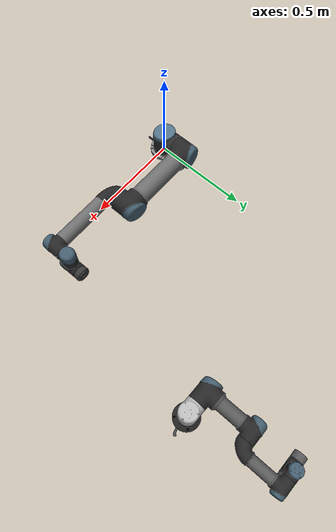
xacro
<?xml version="1.0"?>
<!-- Wrapper modeled after two_arm mutli_arm.urdf.xacro, generalized for any number of robots -->
<robot xmlns:xacro="http://www.ros.org/wiki/xacro" name="static_objects_demo">
  <!-- Initial joint positions YAML used by the ros2_control macro -->
  <xacro:arg name="initial_positions_file" default="$(find static_objects_demo)/config/initial_positions.yaml" />

  <!-- Import multi-robot URDF assembly for this package -->
  <xacro:include filename="$(find static_objects_demo)/urdf/static_objects_demo.urdf" />

  <!-- Import ros2_control macro Xacro placed alongside this wrapper in urdf/ -->
  <xacro:include filename="static_objects_demo.ros2_control.xacro" />

  <!-- Optionally instantiate the control macro (kept commented like the reference): -->

</robot>

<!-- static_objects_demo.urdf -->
<!-- |    This document was autogenerated by xacro from /home/roman/code/cps-gazebo-sim-2/src/static_objects_demo/urdf/static_objects_demo.urdf.xacro | -->
<!-- |    EDITING THIS FILE BY HAND IS NOT RECOMMENDED                                 | -->
<robot name="multi_arm">
  <!-- world reference frame -->
  <link name="world"/>
  <!-- Unified ros2_control for all arms (Ignition simulation) -->
  <ros2_control name="multi_arm_controller_manager" type="system">
    <hardware>
      <plugin>ign_ros2_control/IgnitionSystem</plugin>
    </hardware>
    <!-- robot1 joints -->
    <joint name="robot1_shoulder_pan_joint">
      <command_interface name="position"/>
      <command_interface name="velocity"/>
      <state_interface name="position">
        <param name="initial_value">0</param>
      </state_interface>
      <state_interface name="velocity"/>
      <state_interface name="effort"/>
    </joint>
    <joint name="robot1_shoulder_lift_joint">
      <command_interface name="position"/>
      <command_interface name="velocity"/>
      <state_interface name="position">
        <param name="initial_value">-1.57</param>
      </state_interface>
      <state_interface name="velocity"/>
      <state_interface name="effort"/>
    </joint>
    <joint name="robot1_elbow_joint">
      <command_interface name="position"/>
      <command_interface name="velocity"/>
      <state_interface name="position">
        <param name="initial_value">0</param>
      </state_interface>
      <state_interface name="velocity"/>
      <state_interface name="effort"/>
    </joint>
    <joint name="robot1_wrist_1_joint">
      <command_interface name="position"/>
      <command_interface name="velocity"/>
      <state_interface name="position">
        <param name="initial_value">-1.57</param>
      </state_interface>
      <state_interface name="velocity"/>
      <state_interface name="effort"/>
    </joint>
    <joint name="robot1_wrist_2_joint">
      <command_interface name="position"/>
      <command_interface name="velocity"/>
      <state_interface name="position">
        <param name="initial_value">0</param>
      </state_interface>
      <state_interface name="velocity"/>
      <state_interface name="effort"/>
    </joint>
    <joint name="robot1_wrist_3_joint">
      <command_interface name="position"/>
      <command_interface name="velocity"/>
      <state_interface name="position">
        <param name="initial_value">0</param>
      </state_interface>
      <state_interface name="velocity"/>
      <state_interface name="effort"/>
    </joint>
    <!-- robot2 joints -->
    <joint name="robot2_shoulder_pan_joint">
      <command_interface name="position"/>
      <command_interface name="velocity"/>
      <state_interface name="position">
        <param name="initial_value">0</param>
      </state_interface>
      <state_interface name="velocity"/>
      <state_interface name="effort"/>
    </joint>
    <joint name="robot2_shoulder_lift_joint">
      <command_interface name="position"/>
      <command_interface name="velocity"/>
      <state_interface name="position">
        <param name="initial_value">-1.57</param>
      </state_interface>
      <state_interface name="velocity"/>
      <state_interface name="effort"/>
    </joint>
    <joint name="robot2_elbow_joint">
      <command_interface name="position"/>
      <command_interface name="velocity"/>
      <state_interface name="position">
        <param name="initial_value">0</param>
      </state_interface>
      <state_interface name="velocity"/>
      <state_interface name="effort"/>
    </joint>
    <joint name="robot2_wrist_1_joint">
      <command_interface name="position"/>
      <command_interface name="velocity"/>
      <state_interface name="position">
        <param name="initial_value">-1.57</param>
      </state_interface>
      <state_interface name="velocity"/>
      <state_interface name="effort"/>
    </joint>
    <joint name="robot2_wrist_2_joint">
      <command_interface name="position"/>
      <command_interface name="velocity"/>
      <state_interface name="position">
        <param name="initial_value">0</param>
      </state_interface>
      <state_interface name="velocity"/>
      <state_interface name="effort"/>
    </joint>
    <joint name="robot2_wrist_3_joint">
      <command_interface name="position"/>
      <command_interface name="velocity"/>
      <state_interface name="position">
        <param name="initial_value">0</param>
      </state_interface>
      <state_interface name="velocity"/>
      <state_interface name="effort"/>
    </joint>
  </ros2_control>
  <transmission name="robot1_shoulder_pan_trans">
    <type>transmission_interface/SimpleTransmission</type>
    <joint name="robot1_shoulder_pan_joint">
      <hardwareInterface>hardware_interface/PositionJointInterface</hardwareInterface>
    </joint>
    <actuator name="robot1_shoulder_pan_motor">
      <mechanicalReduction>1</mechanicalReduction>
    </actuator>
  </transmission>
  <transmission name="robot1_shoulder_lift_trans">
    <type>transmission_interface/SimpleTransmission</type>
    <joint name="robot1_shoulder_lift_joint">
      <hardwareInterface>hardware_interface/PositionJointInterface</hardwareInterface>
    </joint>
    <actuator name="robot1_shoulder_lift_motor">
      <mechanicalReduction>1</mechanicalReduction>
    </actuator>
  </transmission>
  <transmission name="robot1_elbow_trans">
    <type>transmission_interface/SimpleTransmission</type>
    <joint name="robot1_elbow_joint">
      <hardwareInterface>hardware_interface/PositionJointInterface</hardwareInterface>
    </joint>
    <actuator name="robot1_elbow_motor">
      <mechanicalReduction>1</mechanicalReduction>
    </actuator>
  </transmission>
  <transmission name="robot1_wrist_1_trans">
    <type>transmission_interface/SimpleTransmission</type>
    <joint name="robot1_wrist_1_joint">
      <hardwareInterface>hardware_interface/PositionJointInterface</hardwareInterface>
    </joint>
    <actuator name="robot1_wrist_1_motor">
      <mechanicalReduction>1</mechanicalReduction>
    </actuator>
  </transmission>
  <transmission name="robot1_wrist_2_trans">
    <type>transmission_interface/SimpleTransmission</type>
    <joint name="robot1_wrist_2_joint">
      <hardwareInterface>hardware_interface/PositionJointInterface</hardwareInterface>
    </joint>
    <actuator name="robot1_wrist_2_motor">
      <mechanicalReduction>1</mechanicalReduction>
    </actuator>
  </transmission>
  <transmission name="robot1_wrist_3_trans">
    <type>transmission_interface/SimpleTransmission</type>
    <joint name="robot1_wrist_3_joint">
      <hardwareInterface>hardware_interface/PositionJointInterface</hardwareInterface>
    </joint>
    <actuator name="robot1_wrist_3_motor">
      <mechanicalReduction>1</mechanicalReduction>
    </actuator>
  </transmission>
  <!-- Placeholder for ros2_control transmission which don't yet exist -->
  <!-- links -  main serial chain -->
  <link name="robot1_base_link"/>
  <link name="robot1_base_link_inertia">
    <visual>
      <origin rpy="0 0 3.141592653589793" xyz="0 0 0"/>
      <geometry>
        <mesh filename="file:///home/roman/code/cps-gazebo-sim-2/install/multi_ur_description/share/multi_ur_description/meshes/ur5/visual/base.dae"/>
      </geometry>
    </visual>
    <collision>
      <origin rpy="0 0 3.141592653589793" xyz="0 0 0"/>
      <geometry>
        <mesh filename="file:///home/roman/code/cps-gazebo-sim-2/install/multi_ur_description/share/multi_ur_description/meshes/ur5/collision/base.stl"/>
      </geometry>
    </collision>
    <inertial>
      <mass value="4.0"/>
      <origin rpy="0 0 0" xyz="0 0 0"/>
      <inertia ixx="0.00443333156" ixy="0.0" ixz="0.0" iyy="0.00443333156" iyz="0.0" izz="0.0072"/>
    </inertial>
  </link>
  <link name="robot1_shoulder_link">
    <visual>
      <origin rpy="0 0 3.141592653589793" xyz="0 0 0"/>
      <geometry>
        <mesh filename="file:///home/roman/code/cps-gazebo-sim-2/install/multi_ur_description/share/multi_ur_description/meshes/ur5/visual/shoulder.dae"/>
      </geometry>
    </visual>
    <collision>
      <origin rpy="0 0 3.141592653589793" xyz="0 0 0"/>
      <geometry>
        <mesh filename="file:///home/roman/code/cps-gazebo-sim-2/install/multi_ur_description/share/multi_ur_description/meshes/ur5/collision/shoulder.stl"/>
      </geometry>
    </collision>
    <inertial>
      <mass value="3.7"/>
      <origin rpy="0 0 0" xyz="0 0 0"/>
      <inertia ixx="0.014972352344389999" ixy="0.0" ixz="0.0" iyy="0.014972352344389999" iyz="0.0" izz="0.01040625"/>
    </inertial>
  </link>
  <link name="robot1_upper_arm_link">
    <visual>
      <origin rpy="1.5707963267948966 0 -1.5707963267948966" xyz="0 0 0.13585"/>
      <geometry>
        <mesh filename="file:///home/roman/code/cps-gazebo-sim-2/install/multi_ur_description/share/multi_ur_description/meshes/ur5/visual/upperarm.dae"/>
      </geometry>
    </visual>
    <collision>
      <origin rpy="1.5707963267948966 0 -1.5707963267948966" xyz="0 0 0.13585"/>
      <geometry>
        <mesh filename="file:///home/roman/code/cps-gazebo-sim-2/install/multi_ur_description/share/multi_ur_description/meshes/ur5/collision/upperarm.stl"/>
      </geometry>
    </collision>
    <inertial>
      <mass value="8.393"/>
      <origin rpy="0 1.5707963267948966 0" xyz="-0.2125 0.0 0.136"/>
      <inertia ixx="0.1338857818623325" ixy="0.0" ixz="0.0" iyy="0.1338857818623325" iyz="0.0" izz="0.0151074"/>
    </inertial>
  </link>
  <link name="robot1_forearm_link">
    <visual>
      <origin rpy="1.5707963267948966 0 -1.5707963267948966" xyz="0 0 0.0165"/>
      <geometry>
        <mesh filename="file:///home/roman/code/cps-gazebo-sim-2/install/multi_ur_description/share/multi_ur_description/meshes/ur5/visual/forearm.dae"/>
      </geometry>
    </visual>
    <collision>
      <origin rpy="1.5707963267948966 0 -1.5707963267948966" xyz="0 0 0.0165"/>
      <geometry>
        <mesh filename="file:///home/roman/code/cps-gazebo-sim-2/install/multi_ur_description/share/multi_ur_description/meshes/ur5/collision/forearm.stl"/>
      </geometry>
    </collision>
    <inertial>
      <mass value="2.275"/>
      <origin rpy="0 1.5707963267948966 0" xyz="-0.196125 0.0 0.0165"/>
      <inertia ixx="0.03121679102890359" ixy="0.0" ixz="0.0" iyy="0.03121679102890359" iyz="0.0" izz="0.004095"/>
    </inertial>
  </link>
  <link name="robot1_wrist_1_link">
    <visual>
      <origin rpy="1.5707963267948966 0 0" xyz="0 0 -0.093"/>
      <geometry>
        <mesh filename="file:///home/roman/code/cps-gazebo-sim-2/install/multi_ur_description/share/multi_ur_description/meshes/ur5/visual/wrist1.dae"/>
      </geometry>
    </visual>
    <collision>
      <origin rpy="1.5707963267948966 0 0" xyz="0 0 -0.093"/>
      <geometry>
        <mesh filename="file:///home/roman/code/cps-gazebo-sim-2/install/multi_ur_description/share/multi_ur_description/meshes/ur5/collision/wrist1.stl"/>
      </geometry>
    </collision>
    <inertial>
      <mass value="1.219"/>
      <origin rpy="0 0 0" xyz="0 0 0"/>
      <inertia ixx="0.0020138887777775" ixy="0.0" ixz="0.0" iyy="0.0020138887777775" iyz="0.0" izz="0.0021942"/>
    </inertial>
  </link>
  <link name="robot1_wrist_2_link">
    <visual>
      <origin rpy="0 0 0" xyz="0 0 -0.095"/>
      <geometry>
        <mesh filename="file:///home/roman/code/cps-gazebo-sim-2/install/multi_ur_description/share/multi_ur_description/meshes/ur5/visual/wrist2.dae"/>
      </geometry>
    </visual>
    <collision>
      <origin rpy="0 0 0" xyz="0 0 -0.095"/>
      <geometry>
        <mesh filename="file:///home/roman/code/cps-gazebo-sim-2/install/multi_ur_description/share/multi_ur_description/meshes/ur5/collision/wrist2.stl"/>
      </geometry>
    </collision>
    <inertial>
      <mass value="1.219"/>
      <origin rpy="0 0 0" xyz="0 0 0"/>
      <inertia ixx="0.0018310388509175" ixy="0.0" ixz="0.0" iyy="0.0018310388509175" iyz="0.0" izz="0.0021942"/>
    </inertial>
  </link>
  <link name="robot1_wrist_3_link">
    <visual>
      <origin rpy="1.5707963267948966 0 0" xyz="0 0 -0.0818"/>
      <geometry>
        <mesh filename="file:///home/roman/code/cps-gazebo-sim-2/install/multi_ur_description/share/multi_ur_description/meshes/ur5/visual/wrist3.dae"/>
      </geometry>
    </visual>
    <collision>
      <origin rpy="1.5707963267948966 0 0" xyz="0 0 -0.0818"/>
      <geometry>
        <mesh filename="file:///home/roman/code/cps-gazebo-sim-2/install/multi_ur_description/share/multi_ur_description/meshes/ur5/collision/wrist3.stl"/>
      </geometry>
    </collision>
    <inertial>
      <mass value="0.1879"/>
      <origin rpy="0 0 0" xyz="0.0 0.0 -0.01525"/>
      <inertia ixx="8.062472608343e-05" ixy="0.0" ixz="0.0" iyy="8.062472608343e-05" iyz="0.0" izz="0.0001321171875"/>
    </inertial>
  </link>
  <!-- base_joint fixes base_link to the environment -->
  <joint name="robot1_base_joint" type="fixed">
    <origin rpy="0 0 0" xyz="0 0 0"/>
    <parent link="world"/>
    <child link="robot1_base_link"/>
  </joint>
  <!-- joints - main serial chain -->
  <joint name="robot1_base_link-base_link_inertia" type="fixed">
    <parent link="robot1_base_link"/>
    <child link="robot1_base_link_inertia"/>
    <origin rpy="0 0 3.141592653589793" xyz="0 0 0"/>
  </joint>
  <joint name="robot1_shoulder_pan_joint" type="revolute">
    <parent link="robot1_base_link_inertia"/>
    <child link="robot1_shoulder_link"/>
    <origin rpy="0 0 0" xyz="0 0 0.089159"/>
    <axis xyz="0 0 1"/>
    <limit effort="150.0" lower="-6.283185307179586" upper="6.283185307179586" velocity="3.141592653589793"/>
    <dynamics damping="0" friction="0"/>
  </joint>
  <joint name="robot1_shoulder_lift_joint" type="revolute">
    <parent link="robot1_shoulder_link"/>
    <child link="robot1_upper_arm_link"/>
    <origin rpy="1.570796327 0 0" xyz="0 0 0"/>
    <axis xyz="0 0 1"/>
    <limit effort="150.0" lower="-6.283185307179586" upper="6.283185307179586" velocity="3.141592653589793"/>
    <dynamics damping="0" friction="0"/>
  </joint>
  <joint name="robot1_elbow_joint" type="revolute">
    <parent link="robot1_upper_arm_link"/>
    <child link="robot1_forearm_link"/>
    <origin rpy="0 0 0" xyz="-0.425 0 0"/>
    <axis xyz="0 0 1"/>
    <limit effort="150.0" lower="-3.141592653589793" upper="3.141592653589793" velocity="3.141592653589793"/>
    <dynamics damping="0" friction="0"/>
  </joint>
  <joint name="robot1_wrist_1_joint" type="revolute">
    <parent link="robot1_forearm_link"/>
    <child link="robot1_wrist_1_link"/>
    <origin rpy="0 0 0" xyz="-0.39225 0 0.10915"/>
    <axis xyz="0 0 1"/>
    <limit effort="28.0" lower="-6.283185307179586" upper="6.283185307179586" velocity="3.141592653589793"/>
    <dynamics damping="0" friction="0"/>
  </joint>
  <joint name="robot1_wrist_2_joint" type="revolute">
    <parent link="robot1_wrist_1_link"/>
    <child link="robot1_wrist_2_link"/>
    <origin rpy="1.570796327 0 0" xyz="0 -0.09465 -1.941303950897609e-11"/>
    <axis xyz="0 0 1"/>
    <limit effort="28.0" lower="-6.283185307179586" upper="6.283185307179586" velocity="3.141592653589793"/>
    <dynamics damping="0" friction="0"/>
  </joint>
  <joint name="robot1_wrist_3_joint" type="revolute">
    <parent link="robot1_wrist_2_link"/>
    <child link="robot1_wrist_3_link"/>
    <origin rpy="1.570796326589793 3.141592653589793 3.141592653589793" xyz="0 0.0823 -1.688001216681175e-11"/>
    <axis xyz="0 0 1"/>
    <limit effort="28.0" lower="-6.283185307179586" upper="6.283185307179586" velocity="3.141592653589793"/>
    <dynamics damping="0" friction="0"/>
  </joint>
  <link name="robot1_ft_frame"/>
  <joint name="robot1_wrist_3_link-ft_frame" type="fixed">
    <parent link="robot1_wrist_3_link"/>
    <child link="robot1_ft_frame"/>
    <origin rpy="3.141592653589793 0 0" xyz="0 0 0"/>
  </joint>
  <!-- ROS-Industrial 'base' frame - base_link to UR 'Base' Coordinates transform -->
  <link name="robot1_base"/>
  <joint name="robot1_base_link-base_fixed_joint" type="fixed">
    <origin rpy="0 0 3.141592653589793" xyz="0 0 0"/>
    <parent link="robot1_base_link"/>
    <child link="robot1_base"/>
  </joint>
  <!-- ROS-Industrial 'flange' frame - attachment point for EEF models -->
  <link name="robot1_flange"/>
  <joint name="robot1_wrist_3-flange" type="fixed">
    <parent link="robot1_wrist_3_link"/>
    <child link="robot1_flange"/>
    <origin rpy="0 -1.5707963267948966 -1.5707963267948966" xyz="0 0 0"/>
  </joint>
  <!-- ROS-Industrial 'tool0' frame - all-zeros tool frame -->
  <link name="robot1_tool0"/>
  <joint name="robot1_flange-tool0" type="fixed">
    <!-- default toolframe - X+ left, Y+ up, Z+ front -->
    <origin rpy="1.5707963267948966 0 1.5707963267948966" xyz="0 0 0"/>
    <parent link="robot1_flange"/>
    <child link="robot1_tool0"/>
  </joint>
  <transmission name="robot2_shoulder_pan_trans">
    <type>transmission_interface/SimpleTransmission</type>
    <joint name="robot2_shoulder_pan_joint">
      <hardwareInterface>hardware_interface/PositionJointInterface</hardwareInterface>
    </joint>
    <actuator name="robot2_shoulder_pan_motor">
      <mechanicalReduction>1</mechanicalReduction>
    </actuator>
  </transmission>
  <transmission name="robot2_shoulder_lift_trans">
    <type>transmission_interface/SimpleTransmission</type>
    <joint name="robot2_shoulder_lift_joint">
      <hardwareInterface>hardware_interface/PositionJointInterface</hardwareInterface>
    </joint>
    <actuator name="robot2_shoulder_lift_motor">
      <mechanicalReduction>1</mechanicalReduction>
    </actuator>
  </transmission>
  <transmission name="robot2_elbow_trans">
    <type>transmission_interface/SimpleTransmission</type>
    <joint name="robot2_elbow_joint">
      <hardwareInterface>hardware_interface/PositionJointInterface</hardwareInterface>
    </joint>
    <actuator name="robot2_elbow_motor">
      <mechanicalReduction>1</mechanicalReduction>
    </actuator>
  </transmission>
  <transmission name="robot2_wrist_1_trans">
    <type>transmission_interface/SimpleTransmission</type>
    <joint name="robot2_wrist_1_joint">
      <hardwareInterface>hardware_interface/PositionJointInterface</hardwareInterface>
    </joint>
    <actuator name="robot2_wrist_1_motor">
      <mechanicalReduction>1</mechanicalReduction>
    </actuator>
  </transmission>
  <transmission name="robot2_wrist_2_trans">
    <type>transmission_interface/SimpleTransmission</type>
    <joint name="robot2_wrist_2_joint">
      <hardwareInterface>hardware_interface/PositionJointInterface</hardwareInterface>
    </joint>
    <actuator name="robot2_wrist_2_motor">
      <mechanicalReduction>1</mechanicalReduction>
    </actuator>
  </transmission>
  <transmission name="robot2_wrist_3_trans">
    <type>transmission_interface/SimpleTransmission</type>
    <joint name="robot2_wrist_3_joint">
      <hardwareInterface>hardware_interface/PositionJointInterface</hardwareInterface>
    </joint>
    <actuator name="robot2_wrist_3_motor">
      <mechanicalReduction>1</mechanicalReduction>
    </actuator>
  </transmission>
  <!-- Placeholder for ros2_control transmission which don't yet exist -->
  <!-- links -  main serial chain -->
  <link name="robot2_base_link"/>
  <link name="robot2_base_link_inertia">
    <visual>
      <origin rpy="0 0 3.141592653589793" xyz="0 0 0"/>
      <geometry>
        <mesh filename="file:///home/roman/code/cps-gazebo-sim-2/install/multi_ur_description/share/multi_ur_description/meshes/ur3/visual/base.dae"/>
      </geometry>
    </visual>
    <collision>
      <origin rpy="0 0 3.141592653589793" xyz="0 0 0"/>
      <geometry>
        <mesh filename="file:///home/roman/code/cps-gazebo-sim-2/install/multi_ur_description/share/multi_ur_description/meshes/ur3/collision/base.stl"/>
      </geometry>
    </collision>
    <inertial>
      <mass value="2.0"/>
      <origin rpy="0 0 0" xyz="0 0 0"/>
      <inertia ixx="0.0030531654454" ixy="0.0" ixz="0.0" iyy="0.0030531654454" iyz="0.0" izz="0.005625"/>
    </inertial>
  </link>
  <link name="robot2_shoulder_link">
    <visual>
      <origin rpy="0 0 3.141592653589793" xyz="0 0 0"/>
      <geometry>
        <mesh filename="file:///home/roman/code/cps-gazebo-sim-2/install/multi_ur_description/share/multi_ur_description/meshes/ur3/visual/shoulder.dae"/>
      </geometry>
    </visual>
    <collision>
      <origin rpy="0 0 3.141592653589793" xyz="0 0 0"/>
      <geometry>
        <mesh filename="file:///home/roman/code/cps-gazebo-sim-2/install/multi_ur_description/share/multi_ur_description/meshes/ur3/collision/shoulder.stl"/>
      </geometry>
    </collision>
    <inertial>
      <mass value="2.0"/>
      <origin rpy="0 0 0" xyz="0 0 0"/>
      <inertia ixx="0.008093163429399999" ixy="0.0" ixz="0.0" iyy="0.008093163429399999" iyz="0.0" izz="0.005625"/>
    </inertial>
  </link>
  <link name="robot2_upper_arm_link">
    <visual>
      <origin rpy="1.5707963267948966 0 -1.5707963267948966" xyz="0 0 0.1198"/>
      <geometry>
        <mesh filename="file:///home/roman/code/cps-gazebo-sim-2/install/multi_ur_description/share/multi_ur_description/meshes/ur3/visual/upperarm.dae"/>
      </geometry>
    </visual>
    <collision>
      <origin rpy="1.5707963267948966 0 -1.5707963267948966" xyz="0 0 0.1198"/>
      <geometry>
        <mesh filename="file:///home/roman/code/cps-gazebo-sim-2/install/multi_ur_description/share/multi_ur_description/meshes/ur3/collision/upperarm.stl"/>
      </geometry>
    </collision>
    <inertial>
      <mass value="3.42"/>
      <origin rpy="0 1.5707963267948966 0" xyz="-0.121825 0.0 0.12"/>
      <inertia ixx="0.021728483221103233" ixy="0.0" ixz="0.0" iyy="0.021728483221103233" iyz="0.0" izz="0.00961875"/>
    </inertial>
  </link>
  <link name="robot2_forearm_link">
    <visual>
      <origin rpy="1.5707963267948966 0 -1.5707963267948966" xyz="0 0 0.0275"/>
      <geometry>
        <mesh filename="file:///home/roman/code/cps-gazebo-sim-2/install/multi_ur_description/share/multi_ur_description/meshes/ur3/visual/forearm.dae"/>
      </geometry>
    </visual>
    <collision>
      <origin rpy="1.5707963267948966 0 -1.5707963267948966" xyz="0 0 0.0275"/>
      <geometry>
        <mesh filename="file:///home/roman/code/cps-gazebo-sim-2/install/multi_ur_description/share/multi_ur_description/meshes/ur3/collision/forearm.stl"/>
      </geometry>
    </collision>
    <inertial>
      <mass value="1.26"/>
      <origin rpy="0 1.5707963267948966 0" xyz="-0.106625 0.0 0.0275"/>
      <inertia ixx="0.006546806443776375" ixy="0.0" ixz="0.0" iyy="0.006546806443776375" iyz="0.0" izz="0.00354375"/>
    </inertial>
  </link>
  <link name="robot2_wrist_1_link">
    <visual>
      <origin rpy="1.5707963267948966 0 0" xyz="0 0 -0.085"/>
      <geometry>
        <mesh filename="file:///home/roman/code/cps-gazebo-sim-2/install/multi_ur_description/share/multi_ur_description/meshes/ur3/visual/wrist1.dae"/>
      </geometry>
    </visual>
    <collision>
      <origin rpy="1.5707963267948966 0 0" xyz="0 0 -0.085"/>
      <geometry>
        <mesh filename="file:///home/roman/code/cps-gazebo-sim-2/install/multi_ur_description/share/multi_ur_description/meshes/ur3/collision/wrist1.stl"/>
      </geometry>
    </collision>
    <inertial>
      <mass value="0.8"/>
      <origin rpy="0 0 0" xyz="0 0 0"/>
      <inertia ixx="0.0016106408557434" ixy="0.0" ixz="0.0" iyy="0.0016106408557434" iyz="0.0" izz="0.00225"/>
    </inertial>
  </link>
  <link name="robot2_wrist_2_link">
    <visual>
      <origin rpy="0 0 0" xyz="0 0 -0.085"/>
      <geometry>
        <mesh filename="file:///home/roman/code/cps-gazebo-sim-2/install/multi_ur_description/share/multi_ur_description/meshes/ur3/visual/wrist2.dae"/>
      </geometry>
    </visual>
    <collision>
      <origin rpy="0 0 0" xyz="0 0 -0.085"/>
      <geometry>
        <mesh filename="file:///home/roman/code/cps-gazebo-sim-2/install/multi_ur_description/share/multi_ur_description/meshes/ur3/collision/wrist2.stl"/>
      </geometry>
    </collision>
    <inertial>
      <mass value="0.8"/>
      <origin rpy="0 0 0" xyz="0 0 0"/>
      <inertia ixx="0.0015721733711303997" ixy="0.0" ixz="0.0" iyy="0.0015721733711303997" iyz="0.0" izz="0.00225"/>
    </inertial>
  </link>
  <link name="robot2_wrist_3_link">
    <visual>
      <origin rpy="1.5707963267948966 0 0" xyz="0 0 -0.082"/>
      <geometry>
        <mesh filename="file:///home/roman/code/cps-gazebo-sim-2/install/multi_ur_description/share/multi_ur_description/meshes/ur3/visual/wrist3.dae"/>
      </geometry>
    </visual>
    <collision>
      <origin rpy="1.5707963267948966 0 0" xyz="0 0 -0.082"/>
      <geometry>
        <mesh filename="file:///home/roman/code/cps-gazebo-sim-2/install/multi_ur_description/share/multi_ur_description/meshes/ur3/collision/wrist3.stl"/>
      </geometry>
    </collision>
    <inertial>
      <mass value="0.35"/>
      <origin rpy="0 0 0" xyz="0.0 0.0 -0.02"/>
      <inertia ixx="0.00013626661215999998" ixy="0.0" ixz="0.0" iyy="0.00013626661215999998" iyz="0.0" izz="0.0001792"/>
    </inertial>
  </link>
  <!-- base_joint fixes base_link to the environment -->
  <joint name="robot2_base_joint" type="fixed">
    <origin rpy="0 0 1.5708" xyz="1.0 1.0 0"/>
    <parent link="world"/>
    <child link="robot2_base_link"/>
  </joint>
  <!-- joints - main serial chain -->
  <joint name="robot2_base_link-base_link_inertia" type="fixed">
    <parent link="robot2_base_link"/>
    <child link="robot2_base_link_inertia"/>
    <origin rpy="0 0 3.141592653589793" xyz="0 0 0"/>
  </joint>
  <joint name="robot2_shoulder_pan_joint" type="revolute">
    <parent link="robot2_base_link_inertia"/>
    <child link="robot2_shoulder_link"/>
    <origin rpy="0 0 0" xyz="0 0 0.1519"/>
    <axis xyz="0 0 1"/>
    <limit effort="56.0" lower="-6.283185307179586" upper="6.283185307179586" velocity="3.141592653589793"/>
    <dynamics damping="0" friction="0"/>
  </joint>
  <joint name="robot2_shoulder_lift_joint" type="revolute">
    <parent link="robot2_shoulder_link"/>
    <child link="robot2_upper_arm_link"/>
    <origin rpy="1.570796327 0 0" xyz="0 0 0"/>
    <axis xyz="0 0 1"/>
    <limit effort="56.0" lower="-6.283185307179586" upper="6.283185307179586" velocity="3.141592653589793"/>
    <dynamics damping="0" friction="0"/>
  </joint>
  <joint name="robot2_elbow_joint" type="revolute">
    <parent link="robot2_upper_arm_link"/>
    <child link="robot2_forearm_link"/>
    <origin rpy="0 0 0" xyz="-0.24365 0 0"/>
    <axis xyz="0 0 1"/>
    <limit effort="28.0" lower="-3.141592653589793" upper="3.141592653589793" velocity="3.141592653589793"/>
    <dynamics damping="0" friction="0"/>
  </joint>
  <joint name="robot2_wrist_1_joint" type="revolute">
    <parent link="robot2_forearm_link"/>
    <child link="robot2_wrist_1_link"/>
    <origin rpy="0 0 0" xyz="-0.21325 0 0.11235"/>
    <axis xyz="0 0 1"/>
    <limit effort="12.0" lower="-6.283185307179586" upper="6.283185307179586" velocity="6.283185307179586"/>
    <dynamics damping="0" friction="0"/>
  </joint>
  <joint name="robot2_wrist_2_joint" type="revolute">
    <parent link="robot2_wrist_1_link"/>
    <child link="robot2_wrist_2_link"/>
    <origin rpy="1.570796327 0 0" xyz="0 -0.08535 -1.750557762378351e-11"/>
    <axis xyz="0 0 1"/>
    <limit effort="12.0" lower="-6.283185307179586" upper="6.283185307179586" velocity="6.283185307179586"/>
    <dynamics damping="0" friction="0"/>
  </joint>
  <joint name="robot2_wrist_3_joint" type="revolute">
    <parent link="robot2_wrist_2_link"/>
    <child link="robot2_wrist_3_link"/>
    <origin rpy="1.570796326589793 3.141592653589793 3.141592653589793" xyz="0 0.0819 -1.679797079540562e-11"/>
    <axis xyz="0 0 1"/>
    <limit effort="12.0" lower="-6.283185307179586" upper="6.283185307179586" velocity="6.283185307179586"/>
    <dynamics damping="0" friction="0"/>
  </joint>
  <link name="robot2_ft_frame"/>
  <joint name="robot2_wrist_3_link-ft_frame" type="fixed">
    <parent link="robot2_wrist_3_link"/>
    <child link="robot2_ft_frame"/>
    <origin rpy="3.141592653589793 0 0" xyz="0 0 0"/>
  </joint>
  <!-- ROS-Industrial 'base' frame - base_link to UR 'Base' Coordinates transform -->
  <link name="robot2_base"/>
  <joint name="robot2_base_link-base_fixed_joint" type="fixed">
    <origin rpy="0 0 3.141592653589793" xyz="0 0 0"/>
    <parent link="robot2_base_link"/>
    <child link="robot2_base"/>
  </joint>
  <!-- ROS-Industrial 'flange' frame - attachment point for EEF models -->
  <link name="robot2_flange"/>
  <joint name="robot2_wrist_3-flange" type="fixed">
    <parent link="robot2_wrist_3_link"/>
    <child link="robot2_flange"/>
    <origin rpy="0 -1.5707963267948966 -1.5707963267948966" xyz="0 0 0"/>
  </joint>
  <!-- ROS-Industrial 'tool0' frame - all-zeros tool frame -->
  <link name="robot2_tool0"/>
  <joint name="robot2_flange-tool0" type="fixed">
    <!-- default toolframe - X+ left, Y+ up, Z+ front -->
    <origin rpy="1.5707963267948966 0 1.5707963267948966" xyz="0 0 0"/>
    <parent link="robot2_flange"/>
    <child link="robot2_tool0"/>
  </joint>
  <gazebo>
    <plugin filename="libign_ros2_control-system.so" name="ign_ros2_control::IgnitionROS2ControlPlugin">
      <parameters>/home/roman/code/cps-gazebo-sim-2/install/static_objects_demo/share/static_objects_demo/config/controllers.yaml</parameters>
    </plugin>
  </gazebo>
</robot>
